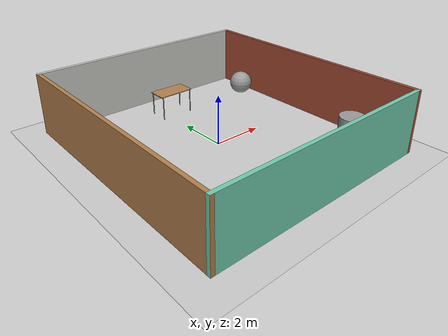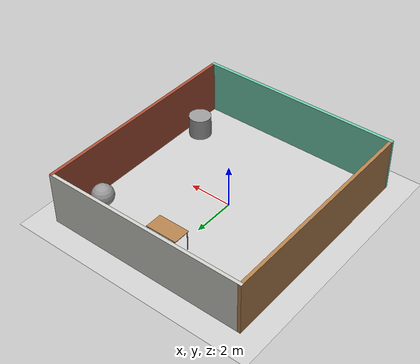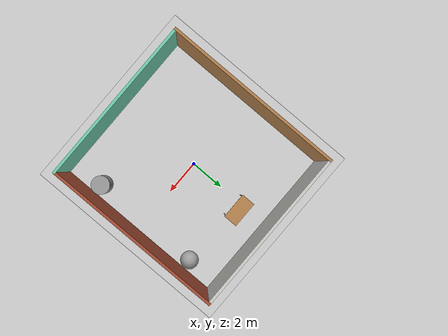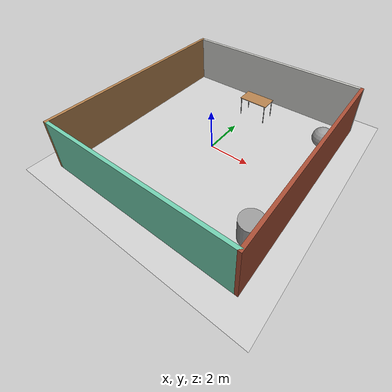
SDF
<sdf version="1.6">
 <world name="default">
  <light name="sun" type="directional">
   <pose>0 0 10 0 -0 0</pose>
   <diffuse>0.8 0.8 0.8 1</diffuse>
   <specular>0.2 0.2 0.2 1</specular>
   <attenuation>
    <range>1000</range>
    <constant>0.9</constant>
    <linear>0.01</linear>
    <quadratic>0.001</quadratic>
   </attenuation>
   <direction>-0.5 0.1 -0.9</direction>
  </light>
  <model name="ground_plane">
   <static>1</static>
   <link name="link">
    <collision name="collision">
     <geometry><plane><normal>0 0 1</normal><size>100 100</size></plane></geometry>
     <surface><friction><ode><mu>100</mu><mu2>50</mu2></ode></friction></surface>
    </collision>
    <visual name="visual">
     <cast_shadows>0</cast_shadows>
     <geometry><plane><normal>0 0 1</normal><size>100 100</size></plane></geometry>
     <material>
      <script><uri>file://media/materials/scripts/gazebo.material</uri><name>Gazebo/Grey</name></script>
     </material>
    </visual>
   </link>
  </model>
  <gravity>0 0 -9.8</gravity>
  <magnetic_field>6e-06 2.3e-05 -4.2e-05</magnetic_field>
  <atmosphere type="adiabatic"/>
  <physics name="default_physics" default="0" type="ode">
   <max_step_size>0.001</max_step_size>
   <real_time_factor>1</real_time_factor>
   <real_time_update_rate>1000</real_time_update_rate>
  </physics>
  <scene><ambient>0.4 0.4 0.4 1</ambient><background>0.7 0.7 0.7 1</background><shadows>1</shadows></scene>
  <spherical_coordinates>
   <surface_model>EARTH_WGS84</surface_model>
   <latitude_deg>0</latitude_deg>
   <longitude_deg>0</longitude_deg>
   <elevation>0</elevation>
   <heading_deg>0</heading_deg>
  </spherical_coordinates>
  <model name="table">
   <static>1</static>
   <link name="link">
    <collision name="surface">
     <pose>0 0 1 0 -0 0</pose>
     <geometry><box><size>1.5 0.8 0.03</size></box></geometry>
     <surface><friction><ode><mu>0.6</mu><mu2>0.6</mu2></ode></friction></surface>
    </collision>
    <visual name="visual1">
     <pose>0 0 1 0 -0 0</pose>
     <geometry><box><size>1.5 0.8 0.03</size></box></geometry>
     <material>
      <script><uri>file://media/materials/scripts/gazebo.material</uri><name>Gazebo/Wood</name></script>
     </material>
    </visual>
    <collision name="front_left_leg">
     <pose>0.68 0.38 0.5 0 -0 0</pose>
     <geometry><cylinder><radius>0.02</radius><length>1</length></cylinder></geometry>
    </collision>
    <visual name="front_left_leg">
     <pose>0.68 0.38 0.5 0 -0 0</pose>
     <geometry><cylinder><radius>0.02</radius><length>1</length></cylinder></geometry>
     <material>
      <script><uri>file://media/materials/scripts/gazebo.material</uri><name>Gazebo/Grey</name></script>
     </material>
    </visual>
    <collision name="front_right_leg">
     <pose>0.68 -0.38 0.5 0 -0 0</pose>
     <geometry><cylinder><radius>0.02</radius><length>1</length></cylinder></geometry>
    </collision>
    <visual name="front_right_leg">
     <pose>0.68 -0.38 0.5 0 -0 0</pose>
     <geometry><cylinder><radius>0.02</radius><length>1</length></cylinder></geometry>
     <material>
      <script><uri>file://media/materials/scripts/gazebo.material</uri><name>Gazebo/Grey</name></script>
     </material>
    </visual>
    <collision name="back_right_leg">
     <pose>-0.68 -0.38 0.5 0 -0 0</pose>
     <geometry><cylinder><radius>0.02</radius><length>1</length></cylinder></geometry>
    </collision>
    <visual name="back_right_leg">
     <pose>-0.68 -0.38 0.5 0 -0 0</pose>
     <geometry><cylinder><radius>0.02</radius><length>1</length></cylinder></geometry>
     <material>
      <script><uri>file://media/materials/scripts/gazebo.material</uri><name>Gazebo/Grey</name></script>
     </material>
    </visual>
    <collision name="back_left_leg">
     <pose>-0.68 0.38 0.5 0 -0 0</pose>
     <geometry><cylinder><radius>0.02</radius><length>1</length></cylinder></geometry>
    </collision>
    <visual name="back_left_leg">
     <pose>-0.68 0.38 0.5 0 -0 0</pose>
     <geometry><cylinder><radius>0.02</radius><length>1</length></cylinder></geometry>
     <material>
      <script><uri>file://media/materials/scripts/gazebo.material</uri><name>Gazebo/Grey</name></script>
     </material>
    </visual>
   </link>
   <pose>0.32462 3.45776 0 0 -0 0</pose>
  </model>
  <model name="unit_cylinder">
   <pose>4.08246 -3.05558 0.5 0 -0 6e-06</pose>
   <link name="link">
    <inertial>
     <mass>1</mass>
     <inertia><ixx>0.145833</ixx><ixy>0</ixy><ixz>0</ixz><iyy>0.145833</iyy><iyz>0</iyz><izz>0.125</izz></inertia>
    </inertial>
    <collision name="collision">
     <geometry><cylinder><radius>0.51227</radius><length>1</length></cylinder></geometry>
    </collision>
    <visual name="visual">
     <geometry><cylinder><radius>0.51227</radius><length>1</length></cylinder></geometry>
     <material>
      <script><name>Gazebo/Grey</name><uri>file://media/materials/scripts/gazebo.material</uri></script>
     </material>
    </visual>
   </link>
  </model>
  <model name="unit_sphere">
   <pose>4.13715 3.20326 0.5 0 -0 0</pose>
   <link name="link">
    <inertial>
     <mass>1</mass>
     <inertia><ixx>0.1</ixx><ixy>0</ixy><ixz>0</ixz><iyy>0.1</iyy><iyz>0</iyz><izz>0.1</izz></inertia>
    </inertial>
    <collision name="collision"><geometry><sphere><radius>0.5</radius></sphere></geometry></collision>
    <visual name="visual">
     <geometry><sphere><radius>0.5</radius></sphere></geometry>
     <material>
      <script><name>Gazebo/Grey</name><uri>file://media/materials/scripts/gazebo.material</uri></script>
     </material>
    </visual>
   </link>
  </model>
  <model name="model_final_final">
   <pose>0.157655 0.040907 0 0 -0 0</pose>
   <link name="Wall_56">
    <collision name="Wall_56_Collision">
     <geometry><box><size>10.25 0.15 2.5</size></box></geometry>
     <pose>0 0 1.25 0 -0 0</pose>
    </collision>
    <visual name="Wall_56_Visual">
     <pose>0 0 1.25 0 -0 0</pose>
     <geometry><box><size>10.25 0.15 2.5</size></box></geometry>
     <material>
      <script><uri>file://media/materials/scripts/gazebo.material</uri><name>Gazebo/Wood</name></script>
      <ambient>1 1 1 1</ambient>
     </material>
     <meta><layer>0</layer></meta>
    </visual>
    <pose>-4.675 -4.9e-05 0 0 0 -1.57079</pose>
   </link>
   <link name="Wall_57">
    <collision name="Wall_57_Collision">
     <geometry><box><size>9.5 0.15 2.5</size></box></geometry>
     <pose>0 0 1.25 0 -0 0</pose>
    </collision>
    <visual name="Wall_57_Visual">
     <pose>0 0 1.25 0 -0 0</pose>
     <geometry><box><size>9.5 0.15 2.5</size></box></geometry>
     <material>
      <script><uri>file://media/materials/scripts/gazebo.material</uri><name>Gazebo/Grey</name></script>
      <ambient>0.435294 0.796078 0.67451 1</ambient>
     </material>
     <meta><layer>0</layer></meta>
    </visual>
    <pose>9e-06 -5.04995 0 0 -0 0</pose>
   </link>
   <link name="Wall_60">
    <collision name="Wall_60_Collision">
     <geometry><box><size>10.25 0.15 2.5</size></box></geometry>
     <pose>0 0 1.25 0 -0 0</pose>
    </collision>
    <visual name="Wall_60_Visual">
     <pose>0 0 1.25 0 -0 0</pose>
     <geometry><box><size>10.25 0.15 2.5</size></box></geometry>
     <material>
      <script><uri>file://media/materials/scripts/gazebo.material</uri><name>Gazebo/Bricks</name></script>
      <ambient>1 1 1 1</ambient>
     </material>
     <meta><layer>0</layer></meta>
    </visual>
    <pose>4.67501 4.8e-05 0 0 -0 1.5708</pose>
   </link>
   <link name="Wall_61">
    <collision name="Wall_61_Collision">
     <geometry><box><size>9.5 0.15 2.5</size></box></geometry>
     <pose>0 0 1.25 0 -0 0</pose>
    </collision>
    <visual name="Wall_61_Visual">
     <pose>0 0 1.25 0 -0 0</pose>
     <geometry><box><size>9.5 0.15 2.5</size></box></geometry>
     <material>
      <script><uri>file://media/materials/scripts/gazebo.material</uri><name>Gazebo/CeilingTiled</name></script>
      <ambient>1 1 1 1</ambient>
     </material>
     <meta><layer>0</layer></meta>
    </visual>
    <pose>-1e-06 5.04995 0 0 0 -3.14157</pose>
   </link>
   <static>1</static>
  </model>
 </world>
</sdf>
